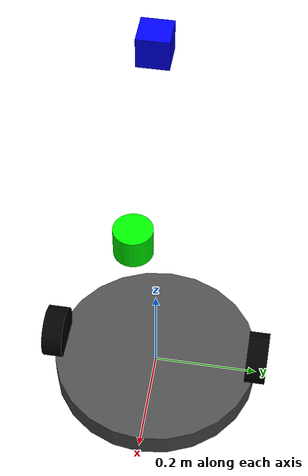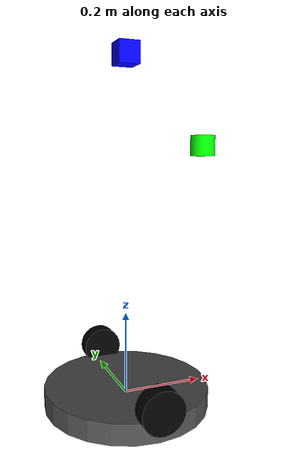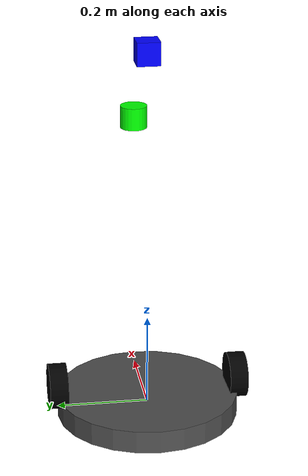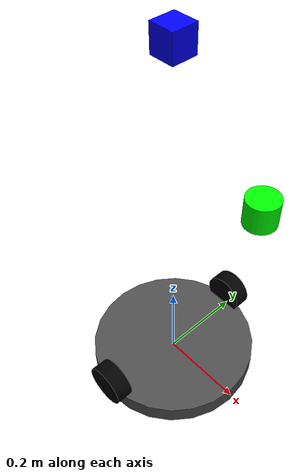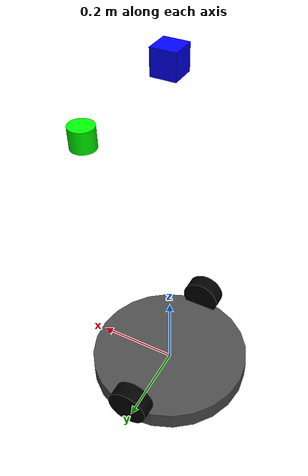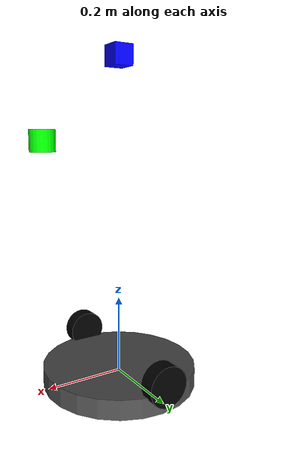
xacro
<?xml version="1.0"?>
<robot name="parobot" xmlns:xacro="http://www.ros.org/wiki/xacro">

  <!-- Constants -->
  <xacro:property name="wheel_radius" value="0.05"/>
  <xacro:property name="wheel_separation" value="0.40"/>
  <xacro:property name="base_radius" value="0.20"/>

  <!-- BASE LINK -->
  <link name="base_link">
    <visual>
      <geometry>
        <cylinder length="0.05" radius="${base_radius}"/>
      </geometry>
      <material name="grey">
        <color rgba="0.3 0.3 0.3 1.0"/>
      </material>
    </visual>
    <collision>
      <geometry>
        <cylinder length="0.05" radius="${base_radius}"/>
      </geometry>
    </collision>
    <inertial>
      <mass value="10.0"/>
      <!-- ✅ all inertia terms must be present -->
      <inertia ixx="1.0" ixy="0.0" ixz="0.0"
               iyy="1.0" iyz="0.0"
               izz="1.0"/>
    </inertial>
  </link>

  <!-- LEFT WHEEL -->
  <link name="left_wheel_link">
    <visual>
      <geometry>
        <cylinder length="0.04" radius="${wheel_radius}"/>
      </geometry>
      <material name="black">
        <color rgba="0.0 0.0 0.0 1.0"/>
      </material>
    </visual>
    <collision>
      <geometry>
        <cylinder length="0.04" radius="${wheel_radius}"/>
      </geometry>
    </collision>
    <inertial>
      <mass value="1.0"/>
      <inertia ixx="0.01" ixy="0.0" ixz="0.0"
               iyy="0.01" iyz="0.0"
               izz="0.01"/>
    </inertial>
  </link>

  <joint name="left_wheel_joint" type="continuous">
    <parent link="base_link"/>
    <child  link="left_wheel_link"/>
    <!-- x forward, y left, z up; wheel_separation/2 is fine once xacro runs -->
    <origin xyz="0.0 ${wheel_separation/2.0} ${wheel_radius}" rpy="${pi/2} 0 0"/>
    <axis xyz="0 1 0"/>
  </joint>

  <!-- RIGHT WHEEL -->
  <link name="right_wheel_link">
    <visual>
      <geometry>
        <cylinder length="0.04" radius="${wheel_radius}"/>
      </geometry>
      <material name="black">
        <color rgba="0.0 0.0 0.0 1.0"/>
      </material>
    </visual>
    <collision>
      <geometry>
        <cylinder length="0.04" radius="${wheel_radius}"/>
      </geometry>
    </collision>
    <inertial>
      <mass value="1.0"/>
      <inertia ixx="0.01" ixy="0.0" ixz="0.0"
               iyy="0.01" iyz="0.0"
               izz="0.01"/>
    </inertial>
  </link>

  <joint name="right_wheel_joint" type="continuous">
    <parent link="base_link"/>
    <child  link="right_wheel_link"/>
    <origin xyz="0.0 -${wheel_separation/2.0} ${wheel_radius}" rpy="${pi/2} 0 0"/>
    <axis xyz="0 1 0"/>
  </joint>

  <!-- CAMERA -->
  <link name="camera_link">
    <visual>
      <geometry>
        <box size="0.05 0.05 0.05"/>
      </geometry>
      <material name="blue">
        <color rgba="0.0 0.0 1.0 1.0"/>
      </material>
    </visual>
    <collision>
      <geometry>
        <box size="0.05 0.05 0.05"/>
      </geometry>
    </collision>
    <inertial>
      <mass value="0.5"/>
      <inertia ixx="0.001" ixy="0.0" ixz="0.0"
               iyy="0.001" iyz="0.0"
               izz="0.001"/>
    </inertial>
  </link>

  <joint name="base_to_camera" type="fixed">
    <parent link="base_link"/>
    <child  link="camera_link"/>
    <origin xyz="0.0 0.0 0.8" rpy="0 0 0"/>
  </joint>

  <!-- LIDAR -->
  <link name="lidar_link">
    <visual>
      <geometry>
        <cylinder length="0.05" radius="0.03"/>
      </geometry>
      <material name="green">
        <color rgba="0.0 1.0 0.0 1.0"/>
      </material>
    </visual>
    <collision>
      <geometry>
        <cylinder length="0.05" radius="0.03"/>
      </geometry>
    </collision>
    <inertial>
      <mass value="0.3"/>
      <inertia ixx="0.0005" ixy="0.0" ixz="0.0"
               iyy="0.0005" iyz="0.0"
               izz="0.0005"/>
    </inertial>
  </link>

  <joint name="base_to_lidar" type="fixed">
    <parent link="base_link"/>
    <child  link="lidar_link"/>
    <origin xyz="0.2 0.0 0.6" rpy="0 0 0"/>
  </joint>

</robot>
